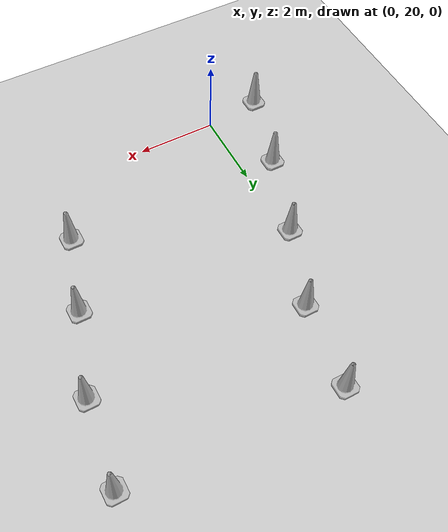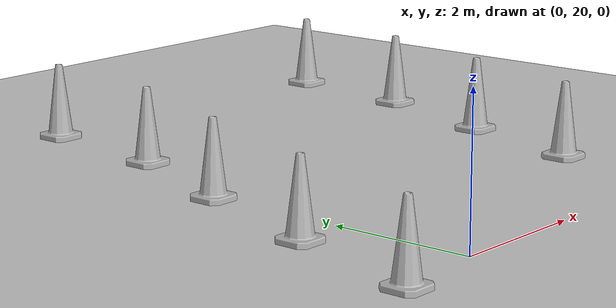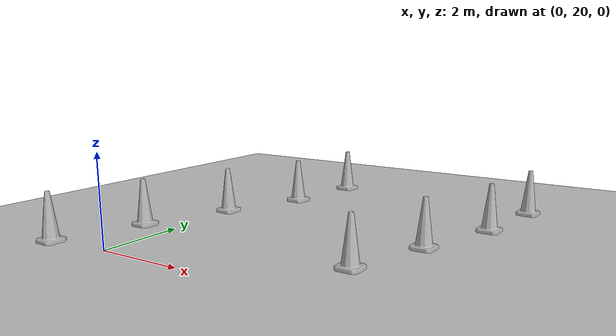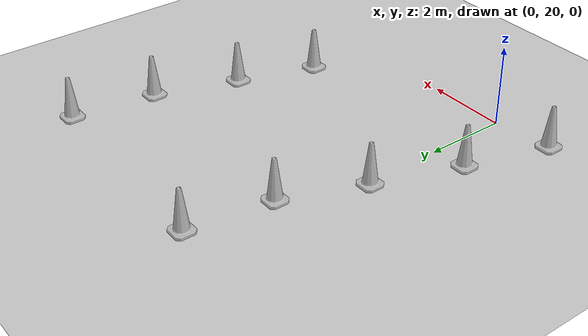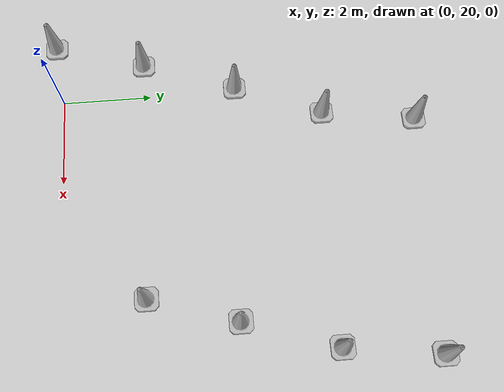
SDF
<sdf version="1.7">
 <world name="default">
  <model name="ground_plane">
   <static>1</static>
   <link name="link">
    <collision name="collision">
     <geometry><plane><normal>0 0 1</normal><size>125 125</size></plane></geometry>
     <surface>
      <contact><collide_bitmask>65535</collide_bitmask></contact>
      <friction><ode><mu>100</mu><mu2>50</mu2></ode></friction>
     </surface>
    </collision>
    <visual name="visual">
     <cast_shadows>0</cast_shadows>
     <geometry><plane><normal>0 0 1</normal><size>125 125</size></plane></geometry>
     <material>
      <script><uri>file://media/materials/scripts/gazebo.material</uri><name>Gazebo/Grey</name></script>
     </material>
    </visual>
   </link>
  </model>
  <model name="Construction Cone 55">
   <link name="link">
    <collision name="collision">
     <geometry>
      <mesh><scale>10 10 10</scale><uri>model://construction_cone/meshes/construction_cone.dae</uri></mesh>
     </geometry>
    </collision>
    <visual name="visual">
     <geometry>
      <mesh><scale>10 10 10</scale><uri>model://construction_cone/meshes/construction_cone.dae</uri></mesh>
     </geometry>
    </visual>
    <inertial>
     <inertia><ixx>1</ixx><ixy>0</ixy><ixz>0</ixz><iyy>1</iyy><iyz>0</iyz><izz>1</izz></inertia>
     <mass>1</mass>
    </inertial>
   </link>
   <pose>0.9997483811912602 28.01035582765605 0 0 0 0</pose>
  </model>
  <model name="Construction Cone 56">
   <link name="link">
    <collision name="collision">
     <geometry>
      <mesh><scale>10 10 10</scale><uri>model://construction_cone/meshes/construction_cone.dae</uri></mesh>
     </geometry>
    </collision>
    <visual name="visual">
     <geometry>
      <mesh><scale>10 10 10</scale><uri>model://construction_cone/meshes/construction_cone.dae</uri></mesh>
     </geometry>
    </visual>
    <inertial>
     <inertia><ixx>1</ixx><ixy>0</ixy><ixz>0</ixz><iyy>1</iyy><iyz>0</iyz><izz>1</izz></inertia>
     <mass>1</mass>
    </inertial>
   </link>
   <pose>6.278248381191261 27.78085582765605 0 0 0 0</pose>
  </model>
  <model name="Construction Cone 59">
   <link name="link">
    <collision name="collision">
     <geometry>
      <mesh><scale>10 10 10</scale><uri>model://construction_cone/meshes/construction_cone.dae</uri></mesh>
     </geometry>
    </collision>
    <visual name="visual">
     <geometry>
      <mesh><scale>10 10 10</scale><uri>model://construction_cone/meshes/construction_cone.dae</uri></mesh>
     </geometry>
    </visual>
    <inertial>
     <inertia><ixx>1</ixx><ixy>0</ixy><ixz>0</ixz><iyy>1</iyy><iyz>0</iyz><izz>1</izz></inertia>
     <mass>1</mass>
    </inertial>
   </link>
   <pose>0.6959983811912593 25.917855827656048 0 0 0 0</pose>
  </model>
  <model name="Construction Cone 61">
   <link name="link">
    <collision name="collision">
     <geometry>
      <mesh><scale>10 10 10</scale><uri>model://construction_cone/meshes/construction_cone.dae</uri></mesh>
     </geometry>
    </collision>
    <visual name="visual">
     <geometry>
      <mesh><scale>10 10 10</scale><uri>model://construction_cone/meshes/construction_cone.dae</uri></mesh>
     </geometry>
    </visual>
    <inertial>
     <inertia><ixx>1</ixx><ixy>0</ixy><ixz>0</ixz><iyy>1</iyy><iyz>0</iyz><izz>1</izz></inertia>
     <mass>1</mass>
    </inertial>
   </link>
   <pose>5.994748381191258 25.715355827656047 0 0 0 0</pose>
  </model>
  <model name="Construction Cone 69">
   <link name="link">
    <collision name="collision">
     <geometry>
      <mesh><scale>10 10 10</scale><uri>model://construction_cone/meshes/construction_cone.dae</uri></mesh>
     </geometry>
    </collision>
    <visual name="visual">
     <geometry>
      <mesh><scale>10 10 10</scale><uri>model://construction_cone/meshes/construction_cone.dae</uri></mesh>
     </geometry>
    </visual>
    <inertial>
     <inertia><ixx>1</ixx><ixy>0</ixy><ixz>0</ixz><iyy>1</iyy><iyz>0</iyz><izz>1</izz></inertia>
     <mass>1</mass>
    </inertial>
   </link>
   <pose>-0.0802516188087381 23.96035582765605 0 0 0 0</pose>
  </model>
  <model name="Construction Cone 71">
   <link name="link">
    <collision name="collision">
     <geometry>
      <mesh><scale>10 10 10</scale><uri>model://construction_cone/meshes/construction_cone.dae</uri></mesh>
     </geometry>
    </collision>
    <visual name="visual">
     <geometry>
      <mesh><scale>10 10 10</scale><uri>model://construction_cone/meshes/construction_cone.dae</uri></mesh>
     </geometry>
    </visual>
    <inertial>
     <inertia><ixx>1</ixx><ixy>0</ixy><ixz>0</ixz><iyy>1</iyy><iyz>0</iyz><izz>1</izz></inertia>
     <mass>1</mass>
    </inertial>
   </link>
   <pose>5.3197483811912605 23.69035582765605 0 0 0 0</pose>
  </model>
  <model name="Construction Cone 77">
   <link name="link">
    <collision name="collision">
     <geometry>
      <mesh><scale>10 10 10</scale><uri>model://construction_cone/meshes/construction_cone.dae</uri></mesh>
     </geometry>
    </collision>
    <visual name="visual">
     <geometry>
      <mesh><scale>10 10 10</scale><uri>model://construction_cone/meshes/construction_cone.dae</uri></mesh>
     </geometry>
    </visual>
    <inertial>
     <inertia><ixx>1</ixx><ixy>0</ixy><ixz>0</ixz><iyy>1</iyy><iyz>0</iyz><izz>1</izz></inertia>
     <mass>1</mass>
    </inertial>
   </link>
   <pose>-0.8227516188087378 21.867855827656047 0 0 0 0</pose>
  </model>
  <model name="Construction Cone 78">
   <link name="link">
    <collision name="collision">
     <geometry>
      <mesh><scale>10 10 10</scale><uri>model://construction_cone/meshes/construction_cone.dae</uri></mesh>
     </geometry>
    </collision>
    <visual name="visual">
     <geometry>
      <mesh><scale>10 10 10</scale><uri>model://construction_cone/meshes/construction_cone.dae</uri></mesh>
     </geometry>
    </visual>
    <inertial>
     <inertia><ixx>1</ixx><ixy>0</ixy><ixz>0</ixz><iyy>1</iyy><iyz>0</iyz><izz>1</izz></inertia>
     <mass>1</mass>
    </inertial>
   </link>
   <pose>4.712248381191259 21.759855827656047 0 0 0 0</pose>
  </model>
  <model name="Construction Cone 86">
   <link name="link">
    <collision name="collision">
     <geometry>
      <mesh><scale>10 10 10</scale><uri>model://construction_cone/meshes/construction_cone.dae</uri></mesh>
     </geometry>
    </collision>
    <visual name="visual">
     <geometry>
      <mesh><scale>10 10 10</scale><uri>model://construction_cone/meshes/construction_cone.dae</uri></mesh>
     </geometry>
    </visual>
    <inertial>
     <inertia><ixx>1</ixx><ixy>0</ixy><ixz>0</ixz><iyy>1</iyy><iyz>0</iyz><izz>1</izz></inertia>
     <mass>1</mass>
    </inertial>
   </link>
   <pose>-1.44375161880874 19.81585582765605 0 0 0 0</pose>
  </model>
 </world>
</sdf>
